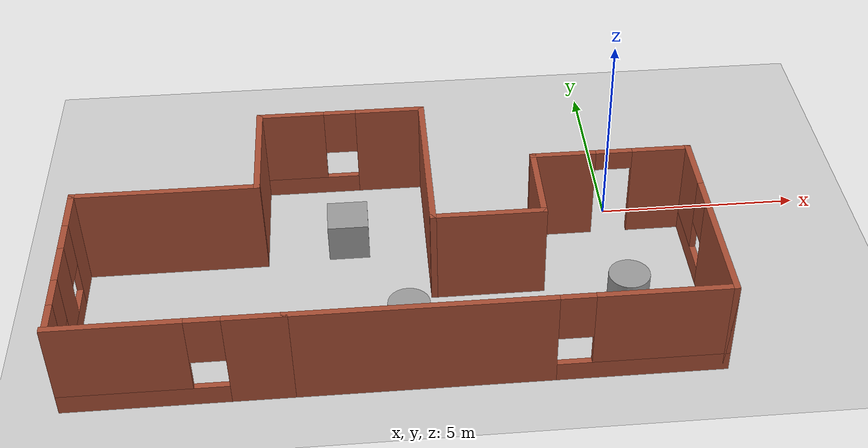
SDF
<sdf version="1.7">
 <world name="default">
  <light name="sun" type="directional">
   <pose>0 0 10 0 -0 0</pose>
   <diffuse>0.8 0.8 0.8 1</diffuse>
   <specular>0.2 0.2 0.2 1</specular>
   <attenuation>
    <range>1000</range>
    <constant>0.9</constant>
    <linear>0.01</linear>
    <quadratic>0.001</quadratic>
   </attenuation>
   <direction>-0.5 0.1 -0.9</direction>
   <spot><inner_angle>0</inner_angle><outer_angle>0</outer_angle><falloff>0</falloff></spot>
  </light>
  <model name="ground_plane">
   <static>1</static>
   <link name="link">
    <collision name="collision">
     <geometry><plane><normal>0 0 1</normal><size>100 100</size></plane></geometry>
     <surface>
      <contact><collide_bitmask>65535</collide_bitmask></contact>
      <friction><ode><mu>100</mu><mu2>50</mu2></ode></friction>
     </surface>
    </collision>
    <visual name="visual">
     <cast_shadows>0</cast_shadows>
     <geometry><plane><normal>0 0 1</normal><size>100 100</size></plane></geometry>
     <material>
      <script><uri>file://media/materials/scripts/gazebo.material</uri><name>Gazebo/Grey</name></script>
     </material>
    </visual>
   </link>
  </model>
  <gravity>0 0 -9.8</gravity>
  <magnetic_field>6e-06 2.3e-05 -4.2e-05</magnetic_field>
  <atmosphere type="adiabatic"/>
  <physics type="ode">
   <max_step_size>0.001</max_step_size>
   <real_time_factor>1</real_time_factor>
   <real_time_update_rate>1000</real_time_update_rate>
  </physics>
  <scene><ambient>0.4 0.4 0.4 1</ambient><background>0.7 0.7 0.7 1</background><shadows>1</shadows></scene>
  <spherical_coordinates>
   <surface_model>EARTH_WGS84</surface_model>
   <latitude_deg>0</latitude_deg>
   <longitude_deg>0</longitude_deg>
   <elevation>0</elevation>
   <heading_deg>0</heading_deg>
  </spherical_coordinates>
  <model name="rool">
   <pose>-5.62702 -2.14079 0 0 -0 0</pose>
   <link name="Wall_10">
    <pose>-1.025 3.675 0 0 -0 3.14159</pose>
    <visual name="Wall_10_Visual_0">
     <pose>-1.24579 0 1.25 0 -0 0</pose>
     <geometry><box><size>1.75842 0.15 2.5</size></box></geometry>
     <material>
      <script><uri>file://media/materials/scripts/gazebo.material</uri><name>Gazebo/Bricks</name></script>
      <ambient>1 1 1 1</ambient>
     </material>
     <meta><layer>0</layer></meta>
    </visual>
    <collision name="Wall_10_Collision_0">
     <geometry><box><size>1.75842 0.15 2.5</size></box></geometry>
     <pose>-1.24579 0 1.25 0 -0 0</pose>
    </collision>
    <visual name="Wall_10_Visual_1">
     <pose>0.879211 0 0.25 0 -0 0</pose>
     <geometry><box><size>2.49158 0.15 0.5</size></box></geometry>
     <material>
      <script><uri>file://media/materials/scripts/gazebo.material</uri><name>Gazebo/Bricks</name></script>
      <ambient>1 1 1 1</ambient>
     </material>
     <meta><layer>0</layer></meta>
    </visual>
    <collision name="Wall_10_Collision_1">
     <geometry><box><size>2.49158 0.15 0.5</size></box></geometry>
     <pose>0.879211 0 0.25 0 -0 0</pose>
    </collision>
    <visual name="Wall_10_Visual_2">
     <pose>1.27921 0 1.5 0 -0 0</pose>
     <geometry><box><size>1.69158 0.15 2</size></box></geometry>
     <material>
      <script><uri>file://media/materials/scripts/gazebo.material</uri><name>Gazebo/Bricks</name></script>
      <ambient>1 1 1 1</ambient>
     </material>
     <meta><layer>0</layer></meta>
    </visual>
    <collision name="Wall_10_Collision_2">
     <geometry><box><size>1.69158 0.15 2</size></box></geometry>
     <pose>1.27921 0 1.5 0 -0 0</pose>
    </collision>
    <visual name="Wall_10_Visual_3">
     <pose>0.033422 0 1.9 0 -0 0</pose>
     <geometry><box><size>0.8 0.15 1.2</size></box></geometry>
     <material>
      <script><uri>file://media/materials/scripts/gazebo.material</uri><name>Gazebo/Bricks</name></script>
      <ambient>1 1 1 1</ambient>
     </material>
     <meta><layer>0</layer></meta>
    </visual>
    <collision name="Wall_10_Collision_3">
     <geometry><box><size>0.8 0.15 1.2</size></box></geometry>
     <pose>0.033422 0 1.9 0 -0 0</pose>
    </collision>
   </link>
   <link name="Wall_11">
    <collision name="Wall_11_Collision">
     <geometry><box><size>3 0.15 2.5</size></box></geometry>
     <pose>0 0 1.25 0 -0 0</pose>
    </collision>
    <visual name="Wall_11_Visual">
     <pose>0 0 1.25 0 -0 0</pose>
     <geometry><box><size>3 0.15 2.5</size></box></geometry>
     <material>
      <script><uri>file://media/materials/scripts/gazebo.material</uri><name>Gazebo/Bricks</name></script>
      <ambient>1 1 1 1</ambient>
     </material>
     <meta><layer>0</layer></meta>
    </visual>
    <pose>-3.075 2.25 0 0 -0 -1.5708</pose>
   </link>
   <link name="Wall_12">
    <collision name="Wall_12_Collision">
     <geometry><box><size>4.5 0.15 2.5</size></box></geometry>
     <pose>0 0 1.25 0 -0 0</pose>
    </collision>
    <visual name="Wall_12_Visual">
     <pose>0 0 1.25 0 -0 0</pose>
     <geometry><box><size>4.5 0.15 2.5</size></box></geometry>
     <material>
      <script><uri>file://media/materials/scripts/gazebo.material</uri><name>Gazebo/Bricks</name></script>
      <ambient>1 1 1 1</ambient>
     </material>
     <meta><layer>0</layer></meta>
    </visual>
    <pose>-5.25 0.825 0 0 -0 3.14159</pose>
   </link>
   <link name="Wall_13">
    <pose>-7.425 -1.35 0 0 -0 -1.5708</pose>
    <visual name="Wall_13_Visual_0">
     <pose>-1.67462 0 1.25 0 -0 0</pose>
     <geometry><box><size>1.15076 0.15 2.5</size></box></geometry>
     <material>
      <script><uri>file://media/materials/scripts/gazebo.material</uri><name>Gazebo/Bricks</name></script>
      <ambient>1 1 1 1</ambient>
     </material>
     <meta><layer>0</layer></meta>
    </visual>
    <collision name="Wall_13_Collision_0">
     <geometry><box><size>1.15076 0.15 2.5</size></box></geometry>
     <pose>-1.67462 0 1.25 0 -0 0</pose>
    </collision>
    <visual name="Wall_13_Visual_1">
     <pose>0.575381 0 0.25 0 -0 0</pose>
     <geometry><box><size>3.34924 0.15 0.5</size></box></geometry>
     <material>
      <script><uri>file://media/materials/scripts/gazebo.material</uri><name>Gazebo/Bricks</name></script>
      <ambient>1 1 1 1</ambient>
     </material>
     <meta><layer>0</layer></meta>
    </visual>
    <collision name="Wall_13_Collision_1">
     <geometry><box><size>3.34924 0.15 0.5</size></box></geometry>
     <pose>0.575381 0 0.25 0 -0 0</pose>
    </collision>
    <visual name="Wall_13_Visual_2">
     <pose>0.23476 0 1.5 0 -0 0</pose>
     <geometry><box><size>1.068 0.15 2</size></box></geometry>
     <material>
      <script><uri>file://media/materials/scripts/gazebo.material</uri><name>Gazebo/Bricks</name></script>
      <ambient>1 1 1 1</ambient>
     </material>
     <meta><layer>0</layer></meta>
    </visual>
    <collision name="Wall_13_Collision_2">
     <geometry><box><size>1.068 0.15 2</size></box></geometry>
     <pose>0.23476 0 1.5 0 -0 0</pose>
    </collision>
    <visual name="Wall_13_Visual_3">
     <pose>1.90938 0 1.5 0 -0 0</pose>
     <geometry><box><size>0.681242 0.15 2</size></box></geometry>
     <material>
      <script><uri>file://media/materials/scripts/gazebo.material</uri><name>Gazebo/Bricks</name></script>
      <ambient>1 1 1 1</ambient>
     </material>
     <meta><layer>0</layer></meta>
    </visual>
    <collision name="Wall_13_Collision_3">
     <geometry><box><size>0.681242 0.15 2</size></box></geometry>
     <pose>1.90938 0 1.5 0 -0 0</pose>
    </collision>
    <visual name="Wall_13_Visual_4">
     <pose>-0.699239 0 1.9 0 -0 0</pose>
     <geometry><box><size>0.8 0.15 1.2</size></box></geometry>
     <material>
      <script><uri>file://media/materials/scripts/gazebo.material</uri><name>Gazebo/Bricks</name></script>
      <ambient>1 1 1 1</ambient>
     </material>
     <meta><layer>0</layer></meta>
    </visual>
    <collision name="Wall_13_Collision_4">
     <geometry><box><size>0.8 0.15 1.2</size></box></geometry>
     <pose>-0.699239 0 1.9 0 -0 0</pose>
    </collision>
    <visual name="Wall_13_Visual_5">
     <pose>1.16876 0 1.9 0 -0 0</pose>
     <geometry><box><size>0.8 0.15 1.2</size></box></geometry>
     <material>
      <script><uri>file://media/materials/scripts/gazebo.material</uri><name>Gazebo/Bricks</name></script>
      <ambient>1 1 1 1</ambient>
     </material>
     <meta><layer>0</layer></meta>
    </visual>
    <collision name="Wall_13_Collision_5">
     <geometry><box><size>0.8 0.15 1.2</size></box></geometry>
     <pose>1.16876 0 1.9 0 -0 0</pose>
    </collision>
   </link>
   <link name="Wall_16">
    <pose>-4.925 -3.675 0 0 -0 3.14159</pose>
    <visual name="Wall_16_Visual_0">
     <pose>-1.91207 0 1.25 0 -0 0</pose>
     <geometry><box><size>1.42587 0.15 2.5</size></box></geometry>
     <material>
      <script><uri>file://media/materials/scripts/gazebo.material</uri><name>Gazebo/Bricks</name></script>
      <ambient>1 1 1 1</ambient>
     </material>
     <meta><layer>0</layer></meta>
    </visual>
    <collision name="Wall_16_Collision_0">
     <geometry><box><size>1.42587 0.15 2.5</size></box></geometry>
     <pose>-1.91207 0 1.25 0 -0 0</pose>
    </collision>
    <visual name="Wall_16_Visual_1">
     <pose>0.712934 0 0.25 0 -0 0</pose>
     <geometry><box><size>3.82413 0.15 0.5</size></box></geometry>
     <material>
      <script><uri>file://media/materials/scripts/gazebo.material</uri><name>Gazebo/Bricks</name></script>
      <ambient>1 1 1 1</ambient>
     </material>
     <meta><layer>0</layer></meta>
    </visual>
    <collision name="Wall_16_Collision_1">
     <geometry><box><size>3.82413 0.15 0.5</size></box></geometry>
     <pose>0.712934 0 0.25 0 -0 0</pose>
    </collision>
    <visual name="Wall_16_Visual_2">
     <pose>1.11293 0 1.5 0 -0 0</pose>
     <geometry><box><size>3.02413 0.15 2</size></box></geometry>
     <material>
      <script><uri>file://media/materials/scripts/gazebo.material</uri><name>Gazebo/Bricks</name></script>
      <ambient>1 1 1 1</ambient>
     </material>
     <meta><layer>0</layer></meta>
    </visual>
    <collision name="Wall_16_Collision_2">
     <geometry><box><size>3.02413 0.15 2</size></box></geometry>
     <pose>1.11293 0 1.5 0 -0 0</pose>
    </collision>
    <visual name="Wall_16_Visual_3">
     <pose>-0.799132 0 1.9 0 -0 0</pose>
     <geometry><box><size>0.8 0.15 1.2</size></box></geometry>
     <material>
      <script><uri>file://media/materials/scripts/gazebo.material</uri><name>Gazebo/Bricks</name></script>
      <ambient>1 1 1 1</ambient>
     </material>
     <meta><layer>0</layer></meta>
    </visual>
    <collision name="Wall_16_Collision_3">
     <geometry><box><size>0.8 0.15 1.2</size></box></geometry>
     <pose>-0.799132 0 1.9 0 -0 0</pose>
    </collision>
   </link>
   <link name="Wall_3">
    <pose>2.55 -3.675 0 0 -0 0</pose>
    <visual name="Wall_3_Visual_0">
     <pose>-1.98733 0 1.25 0 -0 0</pose>
     <geometry><box><size>6.02534 0.15 2.5</size></box></geometry>
     <material>
      <script><uri>file://media/materials/scripts/gazebo.material</uri><name>Gazebo/Bricks</name></script>
      <ambient>1 1 1 1</ambient>
     </material>
     <meta><layer>0</layer></meta>
    </visual>
    <collision name="Wall_3_Collision_0">
     <geometry><box><size>6.02534 0.15 2.5</size></box></geometry>
     <pose>-1.98733 0 1.25 0 -0 0</pose>
    </collision>
    <visual name="Wall_3_Visual_1">
     <pose>3.01267 0 0.25 0 -0 0</pose>
     <geometry><box><size>3.97466 0.15 0.5</size></box></geometry>
     <material>
      <script><uri>file://media/materials/scripts/gazebo.material</uri><name>Gazebo/Bricks</name></script>
      <ambient>1 1 1 1</ambient>
     </material>
     <meta><layer>0</layer></meta>
    </visual>
    <collision name="Wall_3_Collision_1">
     <geometry><box><size>3.97466 0.15 0.5</size></box></geometry>
     <pose>3.01267 0 0.25 0 -0 0</pose>
    </collision>
    <visual name="Wall_3_Visual_2">
     <pose>3.41267 0 1.5 0 -0 0</pose>
     <geometry><box><size>3.17466 0.15 2</size></box></geometry>
     <material>
      <script><uri>file://media/materials/scripts/gazebo.material</uri><name>Gazebo/Bricks</name></script>
      <ambient>1 1 1 1</ambient>
     </material>
     <meta><layer>0</layer></meta>
    </visual>
    <collision name="Wall_3_Collision_2">
     <geometry><box><size>3.17466 0.15 2</size></box></geometry>
     <pose>3.41267 0 1.5 0 -0 0</pose>
    </collision>
    <visual name="Wall_3_Visual_3">
     <pose>1.42534 0 1.9 0 -0 0</pose>
     <geometry><box><size>0.8 0.15 1.2</size></box></geometry>
     <material>
      <script><uri>file://media/materials/scripts/gazebo.material</uri><name>Gazebo/Bricks</name></script>
      <ambient>1 1 1 1</ambient>
     </material>
     <meta><layer>0</layer></meta>
    </visual>
    <collision name="Wall_3_Collision_3">
     <geometry><box><size>0.8 0.15 1.2</size></box></geometry>
     <pose>1.42534 0 1.9 0 -0 0</pose>
    </collision>
   </link>
   <link name="Wall_5">
    <pose>7.475 -1.125 0 0 -0 1.5708</pose>
    <visual name="Wall_5_Visual_0">
     <pose>-1.1574 0 1.25 0 -0 0</pose>
     <geometry><box><size>2.9352 0.15 2.5</size></box></geometry>
     <material>
      <script><uri>file://media/materials/scripts/gazebo.material</uri><name>Gazebo/Bricks</name></script>
      <ambient>1 1 1 1</ambient>
     </material>
     <meta><layer>0</layer></meta>
    </visual>
    <collision name="Wall_5_Collision_0">
     <geometry><box><size>2.9352 0.15 2.5</size></box></geometry>
     <pose>-1.1574 0 1.25 0 -0 0</pose>
    </collision>
    <visual name="Wall_5_Visual_1">
     <pose>1.4676 0 0.25 0 -0 0</pose>
     <geometry><box><size>2.3148 0.15 0.5</size></box></geometry>
     <material>
      <script><uri>file://media/materials/scripts/gazebo.material</uri><name>Gazebo/Bricks</name></script>
      <ambient>1 1 1 1</ambient>
     </material>
     <meta><layer>0</layer></meta>
    </visual>
    <collision name="Wall_5_Collision_1">
     <geometry><box><size>2.3148 0.15 0.5</size></box></geometry>
     <pose>1.4676 0 0.25 0 -0 0</pose>
    </collision>
    <visual name="Wall_5_Visual_2">
     <pose>1.8676 0 1.5 0 -0 0</pose>
     <geometry><box><size>1.5148 0.15 2</size></box></geometry>
     <material>
      <script><uri>file://media/materials/scripts/gazebo.material</uri><name>Gazebo/Bricks</name></script>
      <ambient>1 1 1 1</ambient>
     </material>
     <meta><layer>0</layer></meta>
    </visual>
    <collision name="Wall_5_Collision_2">
     <geometry><box><size>1.5148 0.15 2</size></box></geometry>
     <pose>1.8676 0 1.5 0 -0 0</pose>
    </collision>
    <visual name="Wall_5_Visual_3">
     <pose>0.710196 0 1.9 0 -0 0</pose>
     <geometry><box><size>0.8 0.15 1.2</size></box></geometry>
     <material>
      <script><uri>file://media/materials/scripts/gazebo.material</uri><name>Gazebo/Bricks</name></script>
      <ambient>1 1 1 1</ambient>
     </material>
     <meta><layer>0</layer></meta>
    </visual>
    <collision name="Wall_5_Collision_3">
     <geometry><box><size>0.8 0.15 1.2</size></box></geometry>
     <pose>0.710196 0 1.9 0 -0 0</pose>
    </collision>
   </link>
   <link name="Wall_6">
    <pose>5.55 1.425 0 0 -0 3.14159</pose>
    <visual name="Wall_6_Visual_0">
     <pose>-1.26352 0 1.25 0 -0 0</pose>
     <geometry><box><size>1.47296 0.15 2.5</size></box></geometry>
     <material>
      <script><uri>file://media/materials/scripts/gazebo.material</uri><name>Gazebo/Bricks</name></script>
      <ambient>1 1 1 1</ambient>
     </material>
     <meta><layer>0</layer></meta>
    </visual>
    <collision name="Wall_6_Collision_0">
     <geometry><box><size>1.47296 0.15 2.5</size></box></geometry>
     <pose>-1.26352 0 1.25 0 -0 0</pose>
    </collision>
    <visual name="Wall_6_Visual_1">
     <pose>1.18648 0 1.25 0 -0 0</pose>
     <geometry><box><size>1.62704 0.15 2.5</size></box></geometry>
     <material>
      <script><uri>file://media/materials/scripts/gazebo.material</uri><name>Gazebo/Bricks</name></script>
      <ambient>1 1 1 1</ambient>
     </material>
     <meta><layer>0</layer></meta>
    </visual>
    <collision name="Wall_6_Collision_1">
     <geometry><box><size>1.62704 0.15 2.5</size></box></geometry>
     <pose>1.18648 0 1.25 0 -0 0</pose>
    </collision>
    <visual name="Wall_6_Visual_2">
     <pose>-0.077039 0 2.25 0 -0 0</pose>
     <geometry><box><size>0.9 0.15 0.5</size></box></geometry>
     <material>
      <script><uri>file://media/materials/scripts/gazebo.material</uri><name>Gazebo/Bricks</name></script>
      <ambient>1 1 1 1</ambient>
     </material>
     <meta><layer>0</layer></meta>
    </visual>
    <collision name="Wall_6_Collision_2">
     <geometry><box><size>0.9 0.15 0.5</size></box></geometry>
     <pose>-0.077039 0 2.25 0 -0 0</pose>
    </collision>
   </link>
   <link name="Wall_7">
    <collision name="Wall_7_Collision">
     <geometry><box><size>2.25 0.15 2.5</size></box></geometry>
     <pose>0 0 1.25 0 -0 0</pose>
    </collision>
    <visual name="Wall_7_Visual">
     <pose>0 0 1.25 0 -0 0</pose>
     <geometry><box><size>2.25 0.15 2.5</size></box></geometry>
     <material>
      <script><uri>file://media/materials/scripts/gazebo.material</uri><name>Gazebo/Bricks</name></script>
      <ambient>1 1 1 1</ambient>
     </material>
     <meta><layer>0</layer></meta>
    </visual>
    <pose>3.625 0.375 0 0 -0 -1.5708</pose>
   </link>
   <link name="Wall_8">
    <collision name="Wall_8_Collision">
     <geometry><box><size>2.75 0.15 2.5</size></box></geometry>
     <pose>0 0 1.25 0 -0 0</pose>
    </collision>
    <visual name="Wall_8_Visual">
     <pose>0 0 1.25 0 -0 0</pose>
     <geometry><box><size>2.75 0.15 2.5</size></box></geometry>
     <material>
      <script><uri>file://media/materials/scripts/gazebo.material</uri><name>Gazebo/Bricks</name></script>
      <ambient>1 1 1 1</ambient>
     </material>
     <meta><layer>0</layer></meta>
    </visual>
    <pose>2.325 -0.675 0 0 -0 3.14159</pose>
   </link>
   <link name="Wall_9">
    <collision name="Wall_9_Collision">
     <geometry><box><size>4.5 0.15 2.5</size></box></geometry>
     <pose>0 0 1.25 0 -0 0</pose>
    </collision>
    <visual name="Wall_9_Visual">
     <pose>0 0 1.25 0 -0 0</pose>
     <geometry><box><size>4.5 0.15 2.5</size></box></geometry>
     <material>
      <script><uri>file://media/materials/scripts/gazebo.material</uri><name>Gazebo/Bricks</name></script>
      <ambient>1 1 1 1</ambient>
     </material>
     <meta><layer>0</layer></meta>
    </visual>
    <pose>1.025 1.5 0 0 -0 1.5708</pose>
   </link>
   <static>1</static>
  </model>
  <model name="unit_cylinder">
   <pose>-0.010932 -3.55603 0.499998 3e-06 -4e-06 0</pose>
   <link name="link">
    <inertial>
     <mass>1</mass>
     <inertia><ixx>0.145833</ixx><ixy>0</ixy><ixz>0</ixz><iyy>0.145833</iyy><iyz>0</iyz><izz>0.125</izz></inertia>
    </inertial>
    <collision name="collision">
     <geometry><cylinder><radius>0.5</radius><length>1</length></cylinder></geometry>
    </collision>
    <visual name="visual">
     <geometry><cylinder><radius>0.5</radius><length>1</length></cylinder></geometry>
     <material>
      <script><name>Gazebo/Grey</name><uri>file://media/materials/scripts/gazebo.material</uri></script>
     </material>
    </visual>
   </link>
  </model>
  <model name="unit_cylinder_0">
   <pose>-5.27188 -4.08715 0.499992 -3e-06 4e-06 0</pose>
   <link name="link">
    <inertial>
     <mass>1</mass>
     <inertia><ixx>0.145833</ixx><ixy>0</ixy><ixz>0</ixz><iyy>0.145833</iyy><iyz>0</iyz><izz>0.125</izz></inertia>
    </inertial>
    <collision name="collision">
     <geometry><cylinder><radius>0.5</radius><length>1</length></cylinder></geometry>
    </collision>
    <visual name="visual">
     <geometry><cylinder><radius>0.5</radius><length>1</length></cylinder></geometry>
     <material>
      <script><name>Gazebo/Grey</name><uri>file://media/materials/scripts/gazebo.material</uri></script>
     </material>
    </visual>
   </link>
  </model>
  <model name="unit_box">
   <pose>-6.61519 -0.76604 0.5 0 -0 0</pose>
   <link name="link">
    <inertial>
     <mass>1</mass>
     <inertia>
      <ixx>0.166667</ixx>
      <ixy>0</ixy>
      <ixz>0</ixz>
      <iyy>0.166667</iyy>
      <iyz>0</iyz>
      <izz>0.166667</izz>
     </inertia>
    </inertial>
    <collision name="collision"><geometry><box><size>1 1 1</size></box></geometry></collision>
    <visual name="visual">
     <geometry><box><size>1 1 1</size></box></geometry>
     <material>
      <script><name>Gazebo/Grey</name><uri>file://media/materials/scripts/gazebo.material</uri></script>
     </material>
    </visual>
   </link>
  </model>
 </world>
</sdf>
